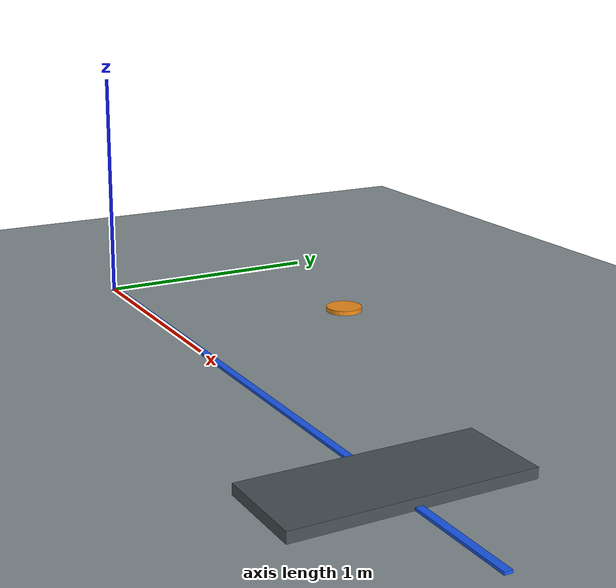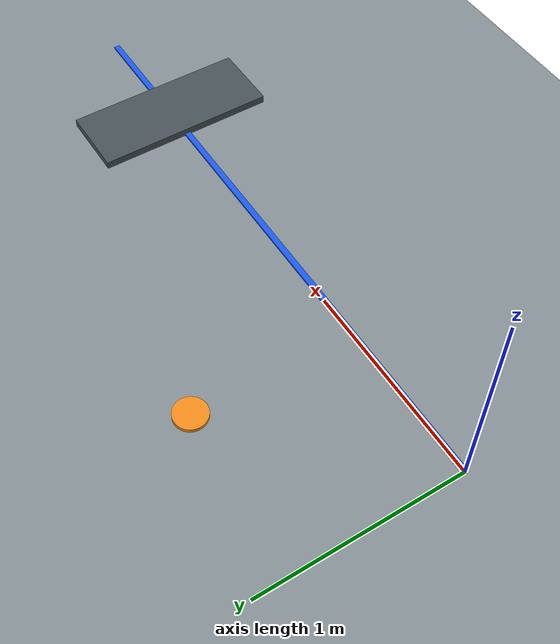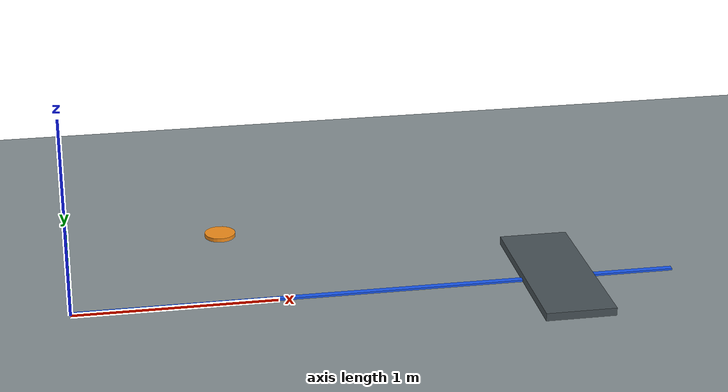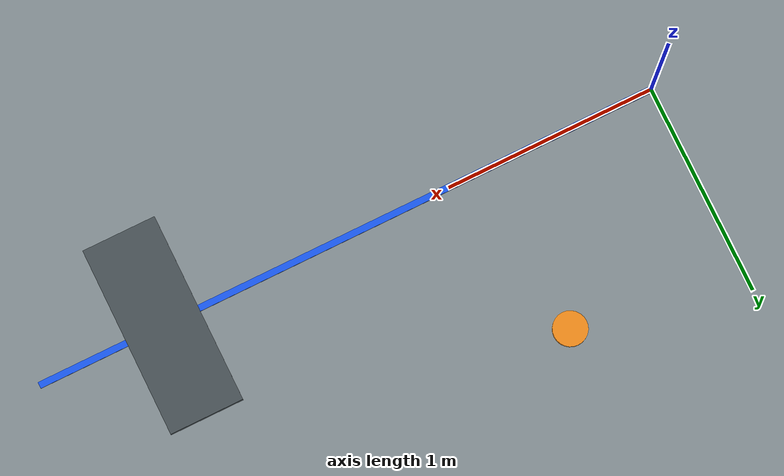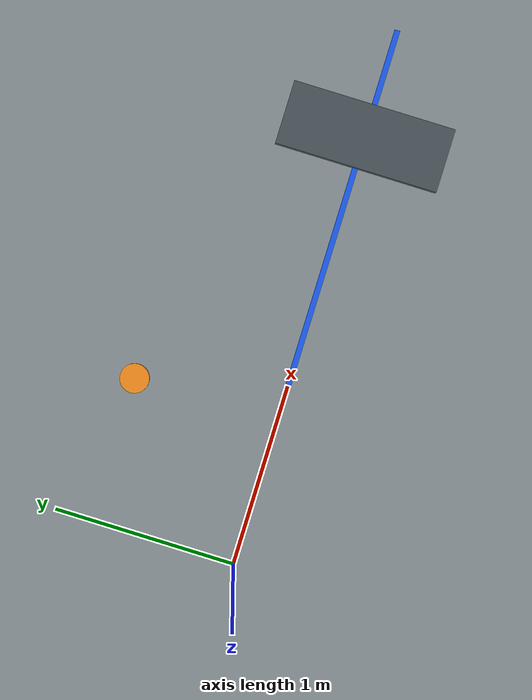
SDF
<sdf version='1.7'>
  <world name='controller_test'>
    <light name='sun' type='directional'>
      <cast_shadows>1</cast_shadows>
      <pose>0 0 10 0 0 0</pose>
      <diffuse>0.85 0.82 0.76 1</diffuse>
      <specular>0.2 0.2 0.2 1</specular>
      <attenuation>
        <range>1000</range>
        <constant>0.9</constant>
        <linear>0.01</linear>
        <quadratic>0.001</quadratic>
      </attenuation>
      <direction>-0.45 0.25 -0.86</direction>
    </light>

    <model name='ground_plane'>
      <static>1</static>
      <link name='link'>
        <collision name='collision'>
          <geometry>
            <plane>
              <normal>0 0 1</normal>
              <size>60 60</size>
            </plane>
          </geometry>
          <surface>
            <friction>
              <ode>
                <mu>100</mu>
                <mu2>50</mu2>
              </ode>
            </friction>
            <contact>
              <ode>
                <kp>1000000</kp>
                <kd>100</kd>
              </ode>
            </contact>
          </surface>
        </collision>
        <visual name='visual'>
          <cast_shadows>0</cast_shadows>
          <geometry>
            <plane>
              <normal>0 0 1</normal>
              <size>60 60</size>
            </plane>
          </geometry>
          <material>
            <ambient>0.52 0.56 0.58 1</ambient>
            <diffuse>0.52 0.56 0.58 1</diffuse>
          </material>
        </visual>
      </link>
    </model>

    <model name='forward_reference_line'>
      <static>1</static>
      <pose>1.5 0 0.006 0 0 0</pose>
      <link name='link'>
        <visual name='visual'>
          <geometry>
            <box><size>3.0 0.03 0.01</size></box>
          </geometry>
          <material>
            <ambient>0.1 0.35 0.95 1</ambient>
            <diffuse>0.1 0.35 0.95 1</diffuse>
          </material>
        </visual>
      </link>
    </model>

    <model name='yaw_test_marker'>
      <static>1</static>
      <pose>0.8 0.8 0.01 0 0 0</pose>
      <link name='link'>
        <visual name='visual'>
          <geometry>
            <cylinder><radius>0.08</radius><length>0.02</length></cylinder>
          </geometry>
          <material>
            <ambient>0.95 0.55 0.1 1</ambient>
            <diffuse>0.95 0.55 0.1 1</diffuse>
          </material>
        </visual>
      </link>
    </model>

    <model name='low_step_probe'>
      <static>1</static>
      <pose>2.4 0 0.02 0 0 0</pose>
      <link name='link'>
        <collision name='collision'>
          <geometry>
            <box><size>0.35 0.9 0.04</size></box>
          </geometry>
        </collision>
        <visual name='visual'>
          <geometry>
            <box><size>0.35 0.9 0.04</size></box>
          </geometry>
          <material>
            <ambient>0.28 0.32 0.34 1</ambient>
            <diffuse>0.28 0.32 0.34 1</diffuse>
          </material>
        </visual>
      </link>
    </model>

    <gravity>0 0 -9.8</gravity>
    <physics type='ode'>
      <max_step_size>0.001</max_step_size>
      <real_time_factor>1</real_time_factor>
      <real_time_update_rate>1000</real_time_update_rate>
    </physics>
    <scene>
      <ambient>0.45 0.45 0.45 1</ambient>
      <background>0.68 0.76 0.86 1</background>
      <shadows>1</shadows>
    </scene>
    <gui fullscreen='0'>
      <camera name='user_camera'>
        <pose>3.2 -4.0 2.0 0 0.38 2.25</pose>
        <view_controller>orbit</view_controller>
        <projection_type>perspective</projection_type>
      </camera>
    </gui>
  </world>
</sdf>
